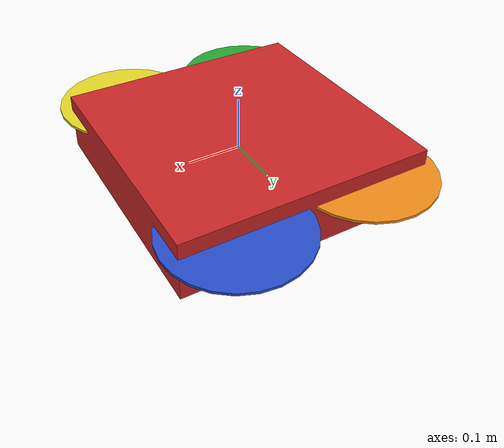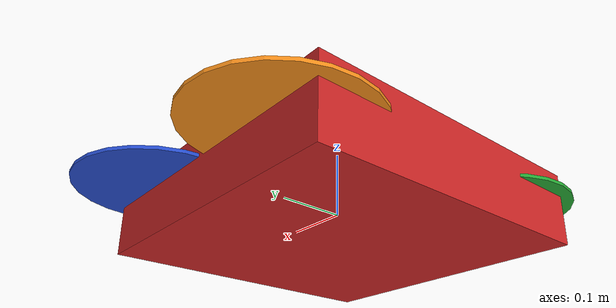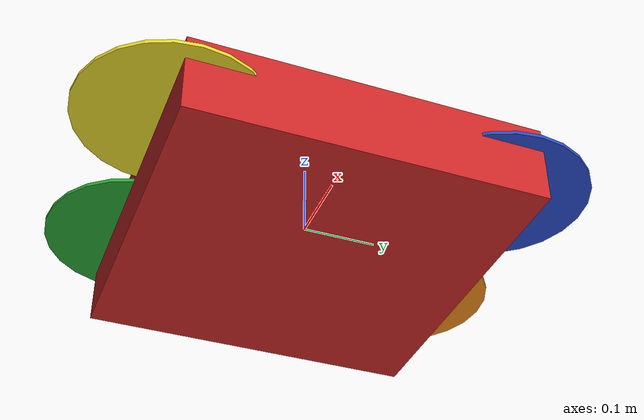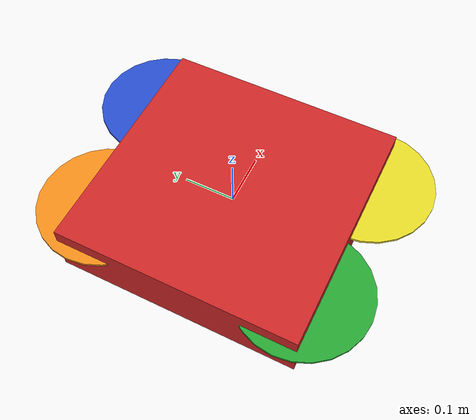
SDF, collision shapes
<sdf version='1.6'>
  <model name='iris'>

<!--   _______________BASE_______________-->
    <link name='base_link'>
      <pose frame=''>0 0 0 0 -0 0</pose>
      <inertial>
        <pose frame=''>0 0 0 0 -0 0</pose>
        <mass>1.5</mass>
        <inertia>
          <ixx>0.0347563</ixx>
          <ixy>0</ixy>
          <ixz>0</ixz>
          <iyy>0.0458929</iyy>
          <iyz>0</iyz>
          <izz>0.0977</izz>
        </inertia>
      </inertial>
      <collision name='base_link_inertia_collision'>
        <pose frame=''>0 0 0 0 -0 0</pose>
        <geometry>
          <box>
            <size>0.47 0.47 0.11</size>
          </box>
        </geometry>
        <surface>
          <contact>
            <ode>
              <min_depth>0.001</min_depth>
              <max_vel>0</max_vel>
            </ode>
          </contact>
          <friction>
            <ode/>
          </friction>
        </surface>
      </collision>
      <visual name='base_link_inertia_visual'>
        <pose frame=''>0 0 0 0 -0 0</pose>
        <geometry>
          <mesh>
            <scale>1 1 1</scale>
            <uri>model://rotors_description/meshes/iris.stl</uri>
          </mesh>
        </geometry>
        <material>
          <script>
            <name>Gazebo/Red</name>
            <uri>file://media/materials/scripts/gazebo.material</uri>
          </script>
        </material>
      </visual>
      <gravity>1</gravity>
      <velocity_decay/>
    </link>

    <link name='/imu_link'>
      <pose frame=''>0 0 0 0 -0 0</pose>
      <inertial>
        <pose frame=''>0 0 0 0 -0 0</pose>
        <mass>0.015</mass>
        <inertia>
          <ixx>1e-05</ixx>
          <ixy>0</ixy>
          <ixz>0</ixz>
          <iyy>1e-05</iyy>
          <iyz>0</iyz>
          <izz>1e-05</izz>
        </inertia>
      </inertial>
    </link>

    <joint name='/imu_joint' type='revolute'>
      <child>/imu_link</child>
      <parent>base_link</parent>
      <axis>
        <xyz>1 0 0</xyz>
        <limit>
          <lower>0</lower>
          <upper>0</upper>
          <effort>0</effort>
          <velocity>0</velocity>
        </limit>
        <dynamics>
          <spring_reference>0</spring_reference>
          <spring_stiffness>0</spring_stiffness>
        </dynamics>
        <use_parent_model_frame>1</use_parent_model_frame>
      </axis>
    </joint>

<!--   _______________PROPELLERS 0_______________-->
    <link name='rotor_0'>
      <pose frame=''>0.13 -0.22 0.023 0 -0 0</pose>
      <inertial>
        <pose frame=''>0 0 0 0 -0 0</pose>
        <mass>0.005</mass>
        <inertia>
          <ixx>9.75e-07</ixx>
          <ixy>0</ixy>
          <ixz>0</ixz>
          <iyy>0.000273104</iyy>
          <iyz>0</iyz>
          <izz>0.000274004</izz>
        </inertia>
      </inertial>
      <collision name='rotor_0_collision'>
        <pose frame=''>0 0 0 0 -0 0</pose>
        <geometry>
          <cylinder>
            <length>0.005</length>
            <radius>0.128</radius>
          </cylinder>
        </geometry>
        <surface>
          <contact>
            <ode/>
          </contact>
          <friction>
            <ode/>
          </friction>
        </surface>
      </collision>
      <visual name='rotor_0_visual'>
        <pose frame=''>0 0 0 0 -0 0</pose>
        <geometry>
          <mesh>
            <scale>1 1 1</scale>
            <uri>model://rotors_description/meshes/iris_prop_ccw.dae</uri>
          </mesh>
        </geometry>
        <material>
          <script>
            <name>Gazebo/Yellow</name>
            <uri>file://media/materials/scripts/gazebo.material</uri>
          </script>
        </material>
      </visual>
      <gravity>1</gravity>
      <velocity_decay/>
    </link>

    <joint name='rotor_0_joint' type='revolute'>
      <child>rotor_0</child>
      <parent>base_link</parent>
      <axis>
        <xyz>0 0 1</xyz>
        <limit>
          <lower>-1e+16</lower>
          <upper>1e+16</upper>
        </limit>
        <dynamics>
          <spring_reference>0</spring_reference>
          <spring_stiffness>0</spring_stiffness>
        </dynamics>
        <use_parent_model_frame>1</use_parent_model_frame>
      </axis>
    </joint>

<!--   _______________PROPELLERS 1_______________-->
    <link name='rotor_1'>
      <pose frame=''>-0.13 0.2 0.023 0 -0 0</pose>
      <inertial>
        <pose frame=''>0 0 0 0 -0 0</pose>
        <mass>0.005</mass>
        <inertia>
          <ixx>9.75e-07</ixx>
          <ixy>0</ixy>
          <ixz>0</ixz>
          <iyy>0.000273104</iyy>
          <iyz>0</iyz>
          <izz>0.000274004</izz>
        </inertia>
      </inertial>
      <collision name='rotor_1_collision'>
        <pose frame=''>0 0 0 0 -0 0</pose>
        <geometry>
          <cylinder>
            <length>0.005</length>
            <radius>0.128</radius>
          </cylinder>
        </geometry>
        <surface>
          <contact>
            <ode/>
          </contact>
          <friction>
            <ode/>
          </friction>
        </surface>
      </collision>
      <visual name='rotor_1_visual'>
        <pose frame=''>0 0 0 0 -0 0</pose>
        <geometry>
          <mesh>
            <scale>1 1 1</scale>
            <uri>model://rotors_description/meshes/iris_prop_ccw.dae</uri>
          </mesh>
        </geometry>
        <material>
          <script>
            <!--DarkGrey-->
            <name>Gazebo/Orange</name>
            <uri>file://media/materials/scripts/gazebo.material</uri>
          </script>
        </material>
      </visual>
      <gravity>1</gravity>
      <velocity_decay/>
    </link>

    <joint name='rotor_1_joint' type='revolute'>
      <child>rotor_1</child>
      <parent>base_link</parent>
      <axis>
        <xyz>0 0 1</xyz>
        <limit>
          <lower>-1e+16</lower>
          <upper>1e+16</upper>
        </limit>
        <dynamics>
          <spring_reference>0</spring_reference>
          <spring_stiffness>0</spring_stiffness>
        </dynamics>
        <use_parent_model_frame>1</use_parent_model_frame>
      </axis>
    </joint>

<!--   _______________PROPELLERS 2_______________-->
    <link name='rotor_2'>
      <pose frame=''>0.13 0.22 0.023 0 -0 0</pose>
      <inertial>
        <pose frame=''>0 0 0 0 -0 0</pose>
        <mass>0.005</mass>
        <inertia>
          <ixx>9.75e-07</ixx>
          <ixy>0</ixy>
          <ixz>0</ixz>
          <iyy>0.000273104</iyy>
          <iyz>0</iyz>
          <izz>0.000274004</izz>
        </inertia>
      </inertial>
      <collision name='rotor_2_collision'>
        <pose frame=''>0 0 0 0 -0 0</pose>
        <geometry>
          <cylinder>
            <length>0.005</length>
            <radius>0.128</radius>
          </cylinder>
        </geometry>
        <surface>
          <contact>
            <ode/>
          </contact>
          <friction>
            <ode/>
          </friction>
        </surface>
      </collision>
      <visual name='rotor_2_visual'>
        <pose frame=''>0 0 0 0 -0 0</pose>
        <geometry>
          <mesh>
            <scale>1 1 1</scale>
            <uri>model://rotors_description/meshes/iris_prop_cw.dae</uri>
          </mesh>
        </geometry>
        <material>
          <script>
            <name>Gazebo/Blue</name>
            <uri>file://media/materials/scripts/gazebo.material</uri>
          </script>
        </material>
      </visual>
      <gravity>1</gravity>
      <velocity_decay/>
    </link>

    <joint name='rotor_2_joint' type='revolute'>
      <child>rotor_2</child>
      <parent>base_link</parent>
      <axis>
        <xyz>0 0 1</xyz>
        <limit>
          <lower>-1e+16</lower>
          <upper>1e+16</upper>
        </limit>
        <dynamics>
          <spring_reference>0</spring_reference>
          <spring_stiffness>0</spring_stiffness>
        </dynamics>
        <use_parent_model_frame>1</use_parent_model_frame>
      </axis>
    </joint>

<!--   _______________PROPELLERS 3_______________-->
    <link name='rotor_3'>
      <pose frame=''>-0.13 -0.2 0.023 0 -0 0</pose>
      <inertial>
        <pose frame=''>0 0 0 0 -0 0</pose>
        <mass>0.005</mass>
        <inertia>
          <ixx>9.75e-07</ixx>
          <ixy>0</ixy>
          <ixz>0</ixz>
          <iyy>0.000273104</iyy>
          <iyz>0</iyz>
          <izz>0.000274004</izz>
        </inertia>
      </inertial>
      <collision name='rotor_3_collision'>
        <pose frame=''>0 0 0 0 -0 0</pose>
        <geometry>
          <cylinder>
            <length>0.005</length>
            <radius>0.128</radius>
          </cylinder>
        </geometry>
        <surface>
          <contact>
            <ode/>
          </contact>
          <friction>
            <ode/>
          </friction>
        </surface>
      </collision>
      <visual name='rotor_3_visual'>
        <pose frame=''>0 0 0 0 -0 0</pose>
        <geometry>
          <mesh>
            <scale>1 1 1</scale>
            <uri>model://rotors_description/meshes/iris_prop_cw.dae</uri>
          </mesh>
        </geometry>
        <material>
          <script>
            <name>Gazebo/Green</name>
            <uri>file://media/materials/scripts/gazebo.material</uri>
          </script>
        </material>
      </visual>
      <gravity>1</gravity>
      <velocity_decay/>
    </link>

    <joint name='rotor_3_joint' type='revolute'>
      <child>rotor_3</child>
      <parent>base_link</parent>
      <axis>
        <xyz>0 0 1</xyz>
        <limit>
          <lower>-1e+16</lower>
          <upper>1e+16</upper>
        </limit>
        <dynamics>
          <spring_reference>0</spring_reference>
          <spring_stiffness>0</spring_stiffness>
        </dynamics>
        <use_parent_model_frame>1</use_parent_model_frame>
      </axis>
    </joint>

<!--______________Sensor_______________-->

   <include>
      <uri>model://sonar_back</uri>
      <pose>0 0 0 0 0 0</pose>
    </include>
    <joint name="sonar_back_joint" type="fixed">
      <child>sonar_back::link</child>
      <parent>base_link</parent>
      <axis>
        <xyz>0 0 1</xyz>
        <limit>
          <upper>0</upper>
          <lower>0</lower>
        </limit>
      </axis>
    </joint>

    <include>
      <uri>model://sonar_left</uri>
      <pose>0 0 0 0 0 0</pose>
    </include>
    <joint name="sonar_left_joint" type="fixed">
      <child>sonar_left::link</child>
      <parent>base_link</parent>
      <axis>
        <xyz>0 0 1</xyz>
        <limit>
          <upper>0</upper>
          <lower>0</lower>
        </limit>
      </axis>
    </joint>

    <include>
      <uri>model://sonar_down</uri>
      <pose>0 0 0 0 0 0</pose>
    </include>
    <joint name="sonar_down_joint" type="fixed">
      <child>sonar_down::link</child>
      <parent>base_link</parent>
      <axis>
        <xyz>0 0 1</xyz>
        <limit>
          <upper>0</upper>
          <lower>0</lower>
        </limit>
      </axis>
    </joint>

    <include>
      <uri>model://sonar_right</uri>
      <pose>0 0 0 0 0 0</pose>
    </include>
    <joint name="sonar_right_joint" type="fixed">
      <child>sonar_right::link</child>
      <parent>base_link</parent>
      <axis>
        <xyz>0 0 1</xyz>
        <limit>
          <upper>0</upper>
          <lower>0</lower>
        </limit>
      </axis>
    </joint>

    <include>
      <uri>model://sonar_up</uri>
      <pose>0 0 0 0 0 0</pose>
    </include>
    <joint name="sonar_up_joint" type="fixed">
      <child>sonar_up::link</child>
      <parent>base_link</parent>
      <axis>
        <xyz>0 0 1</xyz>
        <limit>
          <upper>0</upper>
          <lower>0</lower>
        </limit>
      </axis>
    </joint>

      <include>
      <uri>model://sonar_front</uri>
      <pose>0 0 0 0 0 0</pose>
    </include>
   <joint name="sonar_front_joint" type="fixed">
      <child>sonar_front::link</child>
      <parent>base_link</parent>
      <axis>
        <xyz>0 0 1</xyz>
        <limit>
          <upper>0</upper>
          <lower>0</lower>
        </limit>
      </axis>
    </joint>

<!-- _________________CAMERA__________________ -->

    <plugin name='rosbag' filename='libgazebo_multirotor_base_plugin.so'>
      <robotNamespace/>
      <linkName>base_link</linkName>
      <rotorVelocitySlowdownSim>10</rotorVelocitySlowdownSim>
    </plugin>

    <plugin name='front_right_motor_model' filename='libgazebo_motor_model.so'>
      <robotNamespace/>
      <jointName>rotor_0_joint</jointName>
      <linkName>rotor_0</linkName>
      <turningDirection>ccw</turningDirection>
      <timeConstantUp>0.0125</timeConstantUp>
      <timeConstantDown>0.025</timeConstantDown>
      <maxRotVelocity>1100</maxRotVelocity>
      <motorConstant>8.54858e-06</motorConstant>
      <momentConstant>0.06</momentConstant>
      <commandSubTopic>/gazebo/command/motor_speed</commandSubTopic>
      <motorNumber>0</motorNumber>
      <rotorDragCoefficient>0.000806428</rotorDragCoefficient>
      <rollingMomentCoefficient>1e-06</rollingMomentCoefficient>
      <motorSpeedPubTopic>/motor_speed/0</motorSpeedPubTopic>
      <rotorVelocitySlowdownSim>10</rotorVelocitySlowdownSim>
    </plugin>

    <plugin name='back_left_motor_model' filename='libgazebo_motor_model.so'>
      <robotNamespace/>
      <jointName>rotor_1_joint</jointName>
      <linkName>rotor_1</linkName>
      <turningDirection>ccw</turningDirection>
      <timeConstantUp>0.0125</timeConstantUp>
      <timeConstantDown>0.025</timeConstantDown>
      <maxRotVelocity>1100</maxRotVelocity>
      <motorConstant>8.54858e-06</motorConstant>
      <momentConstant>0.06</momentConstant>
      <commandSubTopic>/gazebo/command/motor_speed</commandSubTopic>
      <motorNumber>1</motorNumber>
      <rotorDragCoefficient>0.000806428</rotorDragCoefficient>
      <rollingMomentCoefficient>1e-06</rollingMomentCoefficient>
      <motorSpeedPubTopic>/motor_speed/1</motorSpeedPubTopic>
      <rotorVelocitySlowdownSim>10</rotorVelocitySlowdownSim>
    </plugin>

    <plugin name='front_left_motor_model' filename='libgazebo_motor_model.so'>
      <robotNamespace/>
      <jointName>rotor_2_joint</jointName>
      <linkName>rotor_2</linkName>
      <turningDirection>cw</turningDirection>
      <timeConstantUp>0.0125</timeConstantUp>
      <timeConstantDown>0.025</timeConstantDown>
      <maxRotVelocity>1100</maxRotVelocity>
      <motorConstant>8.54858e-06</motorConstant>
      <momentConstant>0.06</momentConstant>
      <commandSubTopic>/gazebo/command/motor_speed</commandSubTopic>
      <motorNumber>2</motorNumber>
      <rotorDragCoefficient>0.000806428</rotorDragCoefficient>
      <rollingMomentCoefficient>1e-06</rollingMomentCoefficient>
      <motorSpeedPubTopic>/motor_speed/2</motorSpeedPubTopic>
      <rotorVelocitySlowdownSim>10</rotorVelocitySlowdownSim>
    </plugin>

    <plugin name='back_right_motor_model' filename='libgazebo_motor_model.so'>
      <robotNamespace/>
      <jointName>rotor_3_joint</jointName>
      <linkName>rotor_3</linkName>
      <turningDirection>cw</turningDirection>
      <timeConstantUp>0.0125</timeConstantUp>
      <timeConstantDown>0.025</timeConstantDown>
      <maxRotVelocity>1100</maxRotVelocity>
      <motorConstant>8.54858e-06</motorConstant>
      <momentConstant>0.06</momentConstant>
      <commandSubTopic>/gazebo/command/motor_speed</commandSubTopic>
      <motorNumber>3</motorNumber>
      <rotorDragCoefficient>0.000806428</rotorDragCoefficient>
      <rollingMomentCoefficient>1e-06</rollingMomentCoefficient>
      <motorSpeedPubTopic>/motor_speed/3</motorSpeedPubTopic>
      <rotorVelocitySlowdownSim>10</rotorVelocitySlowdownSim>
    </plugin>

    <plugin name='gps_plugin' filename='libgazebo_gps_plugin.so'>
      <robotNamespace/>
      <gpsNoise>1</gpsNoise>
    </plugin>

    <plugin name='mavlink_interface' filename='libgazebo_mavlink_interface.so'>
      <robotNamespace/>
      <imuSubTopic>/imu</imuSubTopic>
      <gpsSubTopic>/gps</gpsSubTopic>
      <mavlink_addr>INADDR_ANY</mavlink_addr>
      <mavlink_udp_port>14560</mavlink_udp_port>
      <serialEnabled>0</serialEnabled>
      <serialDevice>/dev/ttyACM0</serialDevice>
      <baudRate>921600</baudRate>
      <qgc_addr>INADDR_ANY</qgc_addr>
      <qgc_udp_port>14550</qgc_udp_port>
      <hil_mode>0</hil_mode>
      <hil_state_level>0</hil_state_level>
      <vehicle_is_tailsitter>0</vehicle_is_tailsitter>
      <motorSpeedCommandPubTopic>/gazebo/command/motor_speed</motorSpeedCommandPubTopic>
      <control_channels>
        <channel name='rotor1'>
          <input_index>0</input_index>
          <input_offset>0</input_offset>
          <input_scaling>1000</input_scaling>
          <zero_position_disarmed>0</zero_position_disarmed>
          <zero_position_armed>100</zero_position_armed>
          <joint_control_type>velocity</joint_control_type>
        </channel>
        <channel name='rotor2'>
          <input_index>1</input_index>
          <input_offset>0</input_offset>
          <input_scaling>1000</input_scaling>
          <zero_position_disarmed>0</zero_position_disarmed>
          <zero_position_armed>100</zero_position_armed>
          <joint_control_type>velocity</joint_control_type>
        </channel>
        <channel name='rotor3'>
          <input_index>2</input_index>
          <input_offset>0</input_offset>
          <input_scaling>1000</input_scaling>
          <zero_position_disarmed>0</zero_position_disarmed>
          <zero_position_armed>100</zero_position_armed>
          <joint_control_type>velocity</joint_control_type>
        </channel>
        <channel name='rotor4'>
          <input_index>3</input_index>
          <input_offset>0</input_offset>
          <input_scaling>1000</input_scaling>
          <zero_position_disarmed>0</zero_position_disarmed>
          <zero_position_armed>100</zero_position_armed>
          <joint_control_type>velocity</joint_control_type>
        </channel>
        <channel name='rotor5'>
          <input_index>4</input_index>
          <input_offset>1</input_offset>
          <input_scaling>324.6</input_scaling>
          <zero_position_disarmed>0</zero_position_disarmed>
          <zero_position_armed>0</zero_position_armed>
          <joint_control_type>velocity</joint_control_type>
          <joint_control_pid>
            <p>0.1</p>
            <i>0</i>
            <d>0</d>
            <iMax>0.0</iMax>
            <iMin>0.0</iMin>
            <cmdMax>2</cmdMax>
            <cmdMin>-2</cmdMin>
          </joint_control_pid>
          <joint_name>zephyr_delta_wing::propeller_joint</joint_name>
        </channel>
        <channel name='rotor6'>
          <input_index>5</input_index>
          <input_offset>0</input_offset>
          <input_scaling>0.524</input_scaling>
          <zero_position_disarmed>0</zero_position_disarmed>
          <zero_position_armed>0</zero_position_armed>
          <joint_control_type>position</joint_control_type>
          <joint_name>zephyr_delta_wing::flap_left_joint</joint_name>
          <joint_control_pid>
            <p>10.0</p>
            <i>0</i>
            <d>0</d>
            <iMax>0</iMax>
            <iMin>0</iMin>
            <cmdMax>20</cmdMax>
            <cmdMin>-20</cmdMin>
          </joint_control_pid>
        </channel>
        <channel name='rotor7'>
          <input_index>6</input_index>
          <input_offset>0</input_offset>
          <input_scaling>0.524</input_scaling>
          <zero_position_disarmed>0</zero_position_disarmed>
          <zero_position_armed>0</zero_position_armed>
          <joint_control_type>position</joint_control_type>
          <joint_name>zephyr_delta_wing::flap_right_joint</joint_name>
          <joint_control_pid>
            <p>10.0</p>
            <i>0</i>
            <d>0</d>
            <iMax>0</iMax>
            <iMin>0</iMin>
            <cmdMax>20</cmdMax>
            <cmdMin>-20</cmdMin>
          </joint_control_pid>
        </channel>
        <channel name='rotor8'>
          <input_index>7</input_index>
          <input_offset>0</input_offset>
          <input_scaling>0.524</input_scaling>
          <zero_position_disarmed>0</zero_position_disarmed>
          <zero_position_armed>0</zero_position_armed>
          <joint_control_type>position</joint_control_type>
        </channel>
      </control_channels>
    </plugin>

    <static>0</static>

    <plugin name='rotors_gazebo_imu_plugin' filename='libgazebo_imu_plugin.so'>
      <robotNamespace/>
      <linkName>/imu_link</linkName>
      <imuTopic>/imu</imuTopic>
      <gyroscopeNoiseDensity>0.0003394</gyroscopeNoiseDensity>
      <gyroscopeRandomWalk>3.8785e-05</gyroscopeRandomWalk>
      <gyroscopeBiasCorrelationTime>1000.0</gyroscopeBiasCorrelationTime>
      <gyroscopeTurnOnBiasSigma>0.0087</gyroscopeTurnOnBiasSigma>
      <accelerometerNoiseDensity>0.004</accelerometerNoiseDensity>
      <accelerometerRandomWalk>0.006</accelerometerRandomWalk>
      <accelerometerBiasCorrelationTime>300.0</accelerometerBiasCorrelationTime>
      <accelerometerTurnOnBiasSigma>0.196</accelerometerTurnOnBiasSigma>
    </plugin>

  </model>
</sdf>

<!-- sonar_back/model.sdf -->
<sdf version="1.4">
  <model name="sonar_back">
    <pose>0 0 0.045074 0 -0 0</pose>
    <link name="link">
        <inertial>
        <pose>0 0 0 0 0 0</pose>
          <mass>0.015</mass>
          <inertia>
            <ixx>4.15e-6</ixx>
          <ixy>0</ixy>
          <ixz>0</ixz>
          <iyy>2.407e-6</iyy>
          <iyz>0</iyz>
          <izz>2.407e-6</izz>
          </inertia>
        </inertial>
        <collision name='collision'>
          <geometry>
            <box>
              <size>0.01 0.01 0.01</size>
            </box>
          </geometry>
          <max_contacts>10</max_contacts>
          <surface>
            <contact>
              <ode/>
            </contact>
            <bounce/>
            <friction>
              <ode/>
            </friction>
          </surface>
        </collision>
        <visual name='visual'>
          <geometry>
            <box>
              <size>0.01 0.01 0.01</size>
            </box>
          </geometry>
        </visual>
      <sensor name="sonar_back" type="sonar">
        <pose>0 0 0 1.5707 -1.5707 1.5707</pose>
          <sonar>
            <min>0.02</min>
            <max>5.0</max>
            <radius>1.33974388395</radius>
          </sonar>
        <plugin name="SonarPlugin" filename="libgazebo_sonar_plugin.so"/>

        <always_on>1</always_on>
        <update_rate>20</update_rate>
        <visualize>true</visualize>
      </sensor>
        <self_collide>0</self_collide>
        <kinematic>0</kinematic>
    </link>
  </model>
</sdf>

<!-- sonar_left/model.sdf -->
<sdf version="1.4">
  <model name="sonar_left">
    <pose>0 0 0.045074 0 -0 0</pose>
    <link name="link">
        <inertial>
        <pose>0 0 0 0 0 0</pose>
          <mass>0.015</mass>
          <inertia>
            <ixx>4.15e-6</ixx>
          <ixy>0</ixy>
          <ixz>0</ixz>
          <iyy>2.407e-6</iyy>
          <iyz>0</iyz>
          <izz>2.407e-6</izz>
          </inertia>
        </inertial>
        <collision name='collision'>
          <geometry>
            <box>
              <size>0.01 0.01 0.01</size>
            </box>
          </geometry>
          <max_contacts>10</max_contacts>
          <surface>
            <contact>
              <ode/>
            </contact>
            <bounce/>
            <friction>
              <ode/>
            </friction>
          </surface>
        </collision>
        <visual name='visual'>
          <geometry>
            <box>
              <size>0.01 0.01 0.01</size>
            </box>
          </geometry>
        </visual>
      <sensor name="sonar_left" type="sonar">
        <pose>0 0 0 0 -1.5707 1.5707</pose>
          <sonar>
            <min>0.02</min>
            <max>5.0</max>
            <radius>1.33974388395</radius>
          </sonar>
        <plugin name="SonarPlugin" filename="libgazebo_sonar_plugin.so"/>
        <always_on>1</always_on>
        <update_rate>20</update_rate>
        <visualize>true</visualize>
      </sensor>
        <self_collide>0</self_collide>
        <kinematic>0</kinematic>
    </link>
  </model>
</sdf>

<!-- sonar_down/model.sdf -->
<sdf version="1.4">
  <model name="sonar_down">
    <pose>0 0 0.045074 0 -0 0</pose>
    <link name="link">
        <inertial>
        <pose>0 0 0 0 0 0</pose>
          <mass>0.015</mass>
          <inertia>
            <ixx>4.15e-6</ixx>
          <ixy>0</ixy>
          <ixz>0</ixz>
          <iyy>2.407e-6</iyy>
          <iyz>0</iyz>
          <izz>2.407e-6</izz>
          </inertia>
        </inertial>
        <collision name='collision'>
          <geometry>
            <box>
              <size>0.01 0.01 0.01</size>
            </box>
          </geometry>
          <max_contacts>10</max_contacts>
          <surface>
            <contact>
              <ode/>
            </contact>
            <bounce/>
            <friction>
              <ode/>
            </friction>
          </surface>
        </collision>
        <visual name='visual'>
          <geometry>
            <box>
              <size>0.01 0.01 0.01</size>
            </box>
          </geometry>
        </visual>
      <sensor name="sonar_down" type="sonar">
        <pose>0 0 0 0 0 1.5707</pose>
          <sonar>
            <min>0.02</min>
            <max>5.0</max>
            <radius>1.33974388395</radius>
          </sonar>
        <plugin name="SonarPlugin" filename="libgazebo_sonar_plugin.so"/>
        <always_on>1</always_on>
        <update_rate>20</update_rate>
        <visualize>true</visualize>
      </sensor>
        <self_collide>0</self_collide>
        <kinematic>0</kinematic>
    </link>
  </model>
</sdf>

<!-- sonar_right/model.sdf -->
<sdf version="1.4">
  <model name="sonar_right">
    <pose>0 0 0.045074 0 -0 0</pose>
    <link name="link">
        <inertial>
        <pose>0 0 0 0 0 0</pose>
          <mass>0.015</mass>
          <inertia>
            <ixx>4.15e-6</ixx>
          <ixy>0</ixy>
          <ixz>0</ixz>
          <iyy>2.407e-6</iyy>
          <iyz>0</iyz>
          <izz>2.407e-6</izz>
          </inertia>
        </inertial>
        <collision name='collision'>
          <geometry>
            <box>
              <size>0.01 0.01 0.01</size>
            </box>
          </geometry>
          <max_contacts>10</max_contacts>
          <surface>
            <contact>
              <ode/>
            </contact>
            <bounce/>
            <friction>
              <ode/>
            </friction>
          </surface>
        </collision>
        <visual name='visual'>
          <geometry>
            <box>
              <size>0.01 0.01 0.01</size>
            </box>
          </geometry>
        </visual>
      <sensor name="sonar_right" type="sonar">
        <pose>0 0 0 0 +1.5707 1.5707</pose>
          <sonar>
            <min>0.02</min>
            <max>5.0</max>
            <radius>1.33974388395</radius>
          </sonar>
        <plugin name="SonarPlugin" filename="libgazebo_sonar_plugin.so"/>
        <always_on>1</always_on>
        <update_rate>20</update_rate>
        <visualize>true</visualize>
      </sensor>
        <self_collide>0</self_collide>
        <kinematic>0</kinematic>
    </link>
  </model>
</sdf>

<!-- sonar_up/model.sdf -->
<sdf version="1.4">
  <model name="sonar_up">
    <pose>0 0 0.045074 0 -0 0</pose>
    <link name="link">
        <inertial>
        <pose>0 0 0 0 0 0</pose>
          <mass>0.015</mass>
          <inertia>
            <ixx>4.15e-6</ixx>
          <ixy>0</ixy>
          <ixz>0</ixz>
          <iyy>2.407e-6</iyy>
          <iyz>0</iyz>
          <izz>2.407e-6</izz>
          </inertia>
        </inertial>
        <collision name='collision'>
          <geometry>
            <box>
              <size>0.01 0.01 0.01</size>
            </box>
          </geometry>
          <max_contacts>10</max_contacts>
          <surface>
            <contact>
              <ode/>
            </contact>
            <bounce/>
            <friction>
              <ode/>
            </friction>
          </surface>
        </collision>
        <visual name='visual'>
          <geometry>
            <box>
              <size>0.01 0.01 0.01</size>
            </box>
          </geometry>
        </visual>
      <sensor name="sonar_up" type="sonar">
        <pose>0 0 0 3.1414 0 0</pose>
          <sonar>
            <min>0.02</min>
            <max>5.0</max>
            <radius>1.33974388395</radius>
          </sonar>
        <plugin name="SonarPlugin" filename="libgazebo_sonar_plugin.so"/>
        <always_on>1</always_on>
        <update_rate>20</update_rate>
        <visualize>true</visualize>
      </sensor>
        <self_collide>0</self_collide>
        <kinematic>0</kinematic>
    </link>
  </model>
</sdf>

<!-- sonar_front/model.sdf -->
<sdf version="1.4">
  <model name="sonar_front">
    <pose>0 0 0.045074 0 -0 0</pose>
    <link name="link">
        <inertial>
        <pose>0 0 0 0 0 0</pose>
          <mass>0.015</mass>
          <inertia>
            <ixx>4.15e-6</ixx>
          <ixy>0</ixy>
          <ixz>0</ixz>
          <iyy>2.407e-6</iyy>
          <iyz>0</iyz>
          <izz>2.407e-6</izz>
          </inertia>
        </inertial>
        <collision name='collision'>
          <geometry>
            <box>
              <size>0.01 0.01 0.01</size>
            </box>
          </geometry>
          <max_contacts>10</max_contacts>
          <surface>
            <contact>
              <ode/>
            </contact>
            <bounce/>
            <friction>
              <ode/>
            </friction>
          </surface>
        </collision>
        <visual name='visual'>
          <geometry>
            <box>
              <size>0.01 0.01 0.01</size>
            </box>
          </geometry>
        </visual>
      <sensor name="sonar_front" type="sonar">
        <pose>0 0 0 -1.5707 -1.5707 1.5707</pose>
          <sonar>
            <min>0.02</min>
            <max>5.0</max>
            <radius>1.33974388395</radius>
          </sonar>
        <plugin name="SonarPlugin" filename="libgazebo_sonar_plugin.so"/>
        <always_on>1</always_on>
        <update_rate>20</update_rate>
        <visualize>true</visualize>
      </sensor>
        <self_collide>0</self_collide>
        <kinematic>0</kinematic>
    </link>
  </model>
</sdf>
